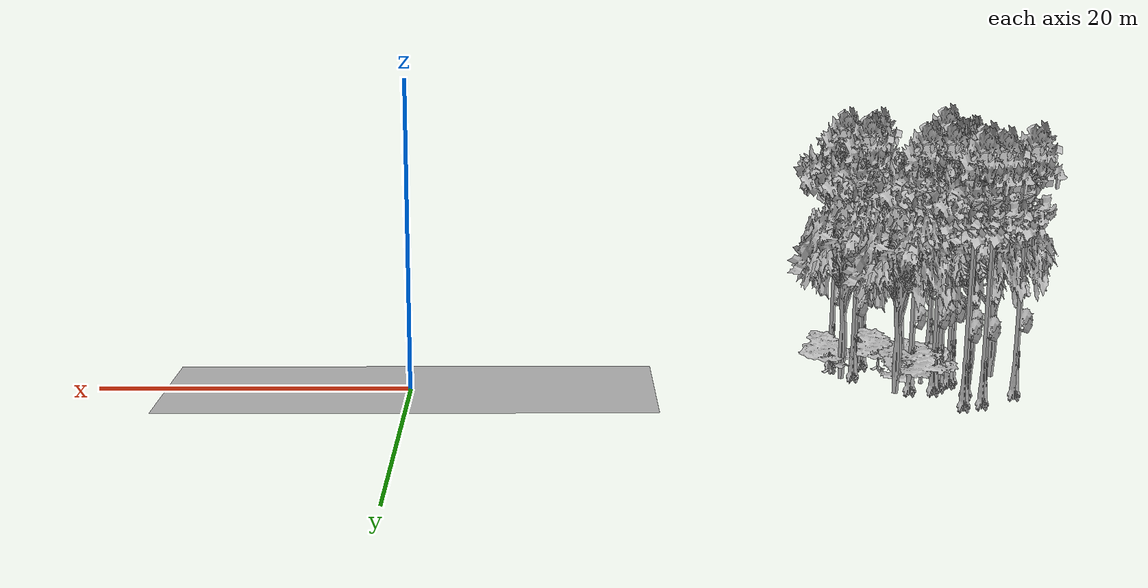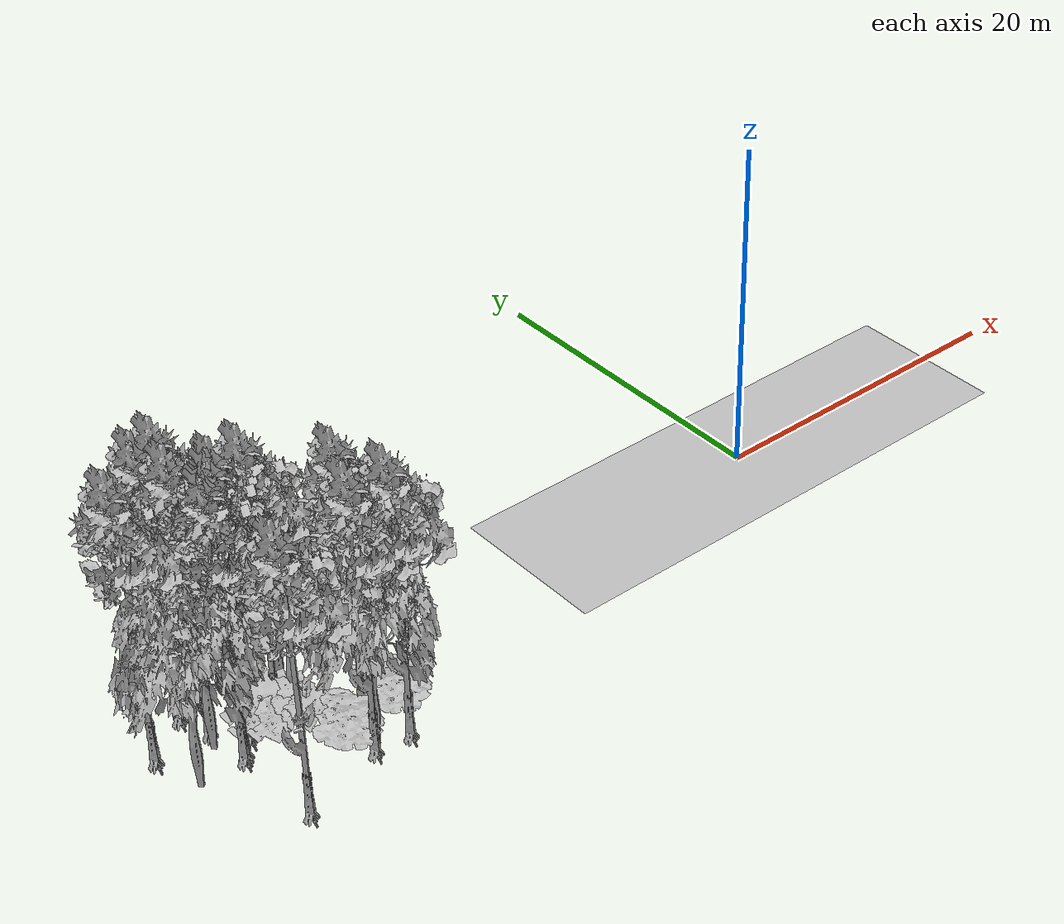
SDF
<sdf version="1.7">
 <world name="default">
  <model name="ground_plane">
   <static>1</static>
   <link name="link">
    <collision name="collision">
     <pose>-50 0 0 0 -0 0</pose>
     <geometry><plane><normal>0 0 1</normal><size>100 100</size></plane></geometry>
     <surface><contact><ode><min_depth>0.01</min_depth><max_vel>0</max_vel></ode></contact></surface>
    </collision>
    <visual name="grass">
     <cast_shadows>0</cast_shadows>
     <geometry>
      <mesh>
       <scale>0.5814285714285714 0.18142857142857144 0.1</scale>
       <uri>file://grass_plane/meshes/grass_plane.dae</uri>
      </mesh>
     </geometry>
    </visual>
   </link>
  </model>
  <model name="Tree 23">
   <static>1</static>
   <pose>-33.157972557217185 -1.3379758567242597 0 1.57079 -0 0</pose>
   <link name="link">
    <collision name="collision">
     <geometry><mesh><scale>3 2 3</scale><uri>model://tree_3/meshes/tree_3.obj</uri></mesh></geometry>
    </collision>
    <visual name="visual">
     <geometry><mesh><scale>3 2 3</scale><uri>model://tree_3/meshes/tree_3.obj</uri></mesh></geometry>
    </visual>
   </link>
  </model>
  <model name="Tree 79">
   <static>1</static>
   <pose>-38.12157944110077 -2.5522789776158668 0 1.57079 -0 0</pose>
   <link name="link">
    <collision name="collision">
     <geometry><mesh><scale>3.5 5 3.5</scale><uri>model://tree_2/meshes/tree_2.obj</uri></mesh></geometry>
    </collision>
    <visual name="visual">
     <geometry><mesh><scale>3.5 5 3.5</scale><uri>model://tree_2/meshes/tree_2.obj</uri></mesh></geometry>
    </visual>
   </link>
  </model>
  <model name="Tree 120">
   <static>1</static>
   <pose>-31.72703118824966 -1.3340469462834506 0 1.57079 -0 0</pose>
   <link name="link">
    <collision name="collision">
     <geometry><mesh><scale>3.5 5 3.5</scale><uri>model://tree_2/meshes/tree_2.obj</uri></mesh></geometry>
    </collision>
    <visual name="visual">
     <geometry><mesh><scale>3.5 5 3.5</scale><uri>model://tree_2/meshes/tree_2.obj</uri></mesh></geometry>
    </visual>
   </link>
  </model>
  <model name="Tree 123">
   <static>1</static>
   <pose>-35.16788557259518 -2.0317393601325264 0 1.57079 -0 0</pose>
   <link name="link">
    <collision name="collision">
     <geometry><mesh><scale>3.5 5 3.5</scale><uri>model://tree_9/meshes/tree_9.obj</uri></mesh></geometry>
    </collision>
    <visual name="visual">
     <geometry><mesh><scale>3.5 5 3.5</scale><uri>model://tree_9/meshes/tree_9.obj</uri></mesh></geometry>
    </visual>
   </link>
  </model>
  <model name="Tree 155">
   <static>1</static>
   <pose>-28.185803099111215 -2.163787672048045 0 1.57079 -0 0</pose>
   <link name="link">
    <collision name="collision">
     <geometry><mesh><scale>3.5 5 3.5</scale><uri>model://tree_2/meshes/tree_2.obj</uri></mesh></geometry>
    </collision>
    <visual name="visual">
     <geometry><mesh><scale>3.5 5 3.5</scale><uri>model://tree_2/meshes/tree_2.obj</uri></mesh></geometry>
    </visual>
   </link>
  </model>
  <model name="Tree 184">
   <static>1</static>
   <pose>-33.798739994826406 -0.4799445855020643 0 1.57079 -0 0</pose>
   <link name="link">
    <collision name="collision">
     <geometry><mesh><scale>3.5 5 3.5</scale><uri>model://tree_9/meshes/tree_9.obj</uri></mesh></geometry>
    </collision>
    <visual name="visual">
     <geometry><mesh><scale>3.5 5 3.5</scale><uri>model://tree_9/meshes/tree_9.obj</uri></mesh></geometry>
    </visual>
   </link>
  </model>
  <model name="Tree 188">
   <static>1</static>
   <pose>-32.26415668385563 -0.47855789451170594 0 1.57079 -0 0</pose>
   <link name="link">
    <collision name="collision">
     <geometry><mesh><scale>3.5 5 3.5</scale><uri>model://tree_9/meshes/tree_9.obj</uri></mesh></geometry>
    </collision>
    <visual name="visual">
     <geometry><mesh><scale>3.5 5 3.5</scale><uri>model://tree_9/meshes/tree_9.obj</uri></mesh></geometry>
    </visual>
   </link>
  </model>
  <model name="Tree 248">
   <static>1</static>
   <pose>-38.78617609711604 0.43099210494666096 0 1.57079 -0 0</pose>
   <link name="link">
    <collision name="collision">
     <geometry><mesh><scale>3.5 5 3.5</scale><uri>model://tree_9/meshes/tree_9.obj</uri></mesh></geometry>
    </collision>
    <visual name="visual">
     <geometry><mesh><scale>3.5 5 3.5</scale><uri>model://tree_9/meshes/tree_9.obj</uri></mesh></geometry>
    </visual>
   </link>
  </model>
  <model name="Tree 285">
   <static>1</static>
   <pose>-29.970217457176776 -5.780632660796755 0 1.57079 -0 0</pose>
   <link name="link">
    <collision name="collision">
     <geometry><mesh><scale>3.5 5 3.5</scale><uri>model://tree_2/meshes/tree_2.obj</uri></mesh></geometry>
    </collision>
    <visual name="visual">
     <geometry><mesh><scale>3.5 5 3.5</scale><uri>model://tree_2/meshes/tree_2.obj</uri></mesh></geometry>
    </visual>
   </link>
  </model>
  <model name="Tree 291">
   <static>1</static>
   <pose>-35.37718763701514 -2.2792620194789386 0 1.57079 -0 0</pose>
   <link name="link">
    <collision name="collision">
     <geometry><mesh><scale>3.5 5 3.5</scale><uri>model://tree_9/meshes/tree_9.obj</uri></mesh></geometry>
    </collision>
    <visual name="visual">
     <geometry><mesh><scale>3.5 5 3.5</scale><uri>model://tree_9/meshes/tree_9.obj</uri></mesh></geometry>
    </visual>
   </link>
  </model>
  <model name="Tree 352">
   <static>1</static>
   <pose>-34.34122828568171 -1.1824027472017011 0 1.57079 -0 0</pose>
   <link name="link">
    <collision name="collision">
     <geometry><mesh><scale>3.5 5 3.5</scale><uri>model://tree_9/meshes/tree_9.obj</uri></mesh></geometry>
    </collision>
    <visual name="visual">
     <geometry><mesh><scale>3.5 5 3.5</scale><uri>model://tree_9/meshes/tree_9.obj</uri></mesh></geometry>
    </visual>
   </link>
  </model>
  <model name="Tree 370">
   <static>1</static>
   <pose>-35.11409360523716 -7.516257942602849 0 1.57079 -0 0</pose>
   <link name="link">
    <collision name="collision">
     <geometry><mesh><scale>3.5 5 3.5</scale><uri>model://tree_9/meshes/tree_9.obj</uri></mesh></geometry>
    </collision>
    <visual name="visual">
     <geometry><mesh><scale>3.5 5 3.5</scale><uri>model://tree_9/meshes/tree_9.obj</uri></mesh></geometry>
    </visual>
   </link>
  </model>
  <model name="Tree 417">
   <static>1</static>
   <pose>-28.143418496462377 -6.173523545952918 0 1.57079 -0 0</pose>
   <link name="link">
    <collision name="collision">
     <geometry><mesh><scale>3.5 5 3.5</scale><uri>model://tree_9/meshes/tree_9.obj</uri></mesh></geometry>
    </collision>
    <visual name="visual">
     <geometry><mesh><scale>3.5 5 3.5</scale><uri>model://tree_9/meshes/tree_9.obj</uri></mesh></geometry>
    </visual>
   </link>
  </model>
  <model name="Tree 458">
   <static>1</static>
   <pose>-36.19234305395764 -0.712347195967288 0 1.57079 -0 0</pose>
   <link name="link">
    <collision name="collision">
     <geometry><mesh><scale>3.5 5 3.5</scale><uri>model://tree_2/meshes/tree_2.obj</uri></mesh></geometry>
    </collision>
    <visual name="visual">
     <geometry><mesh><scale>3.5 5 3.5</scale><uri>model://tree_2/meshes/tree_2.obj</uri></mesh></geometry>
    </visual>
   </link>
  </model>
  <model name="Tree 459">
   <static>1</static>
   <pose>-30.198947089543548 -6.019097096407467 0 1.57079 -0 0</pose>
   <link name="link">
    <collision name="collision">
     <geometry><mesh><scale>3.5 5 3.5</scale><uri>model://tree_9/meshes/tree_9.obj</uri></mesh></geometry>
    </collision>
    <visual name="visual">
     <geometry><mesh><scale>3.5 5 3.5</scale><uri>model://tree_9/meshes/tree_9.obj</uri></mesh></geometry>
    </visual>
   </link>
  </model>
  <model name="Tree 478">
   <static>1</static>
   <pose>-34.97753662888709 2.7053236228995203 0 1.57079 -0 0</pose>
   <link name="link">
    <collision name="collision">
     <geometry><mesh><scale>3.5 5 3.5</scale><uri>model://tree_9/meshes/tree_9.obj</uri></mesh></geometry>
    </collision>
    <visual name="visual">
     <geometry><mesh><scale>3.5 5 3.5</scale><uri>model://tree_9/meshes/tree_9.obj</uri></mesh></geometry>
    </visual>
   </link>
  </model>
  <model name="Tree 485">
   <static>1</static>
   <pose>-30.959753590321373 -4.281396923890757 0 1.57079 -0 0</pose>
   <link name="link">
    <collision name="collision">
     <geometry><mesh><scale>4 2.5 4</scale><uri>model://tree_1/meshes/tree_1.obj</uri></mesh></geometry>
    </collision>
    <visual name="visual">
     <geometry><mesh><scale>4 2.5 4</scale><uri>model://tree_1/meshes/tree_1.obj</uri></mesh></geometry>
    </visual>
   </link>
  </model>
  <model name="Tree 486">
   <static>1</static>
   <pose>-32.55497649297193 -2.061286591572193 0 1.57079 -0 0</pose>
   <link name="link">
    <collision name="collision">
     <geometry><mesh><scale>3 2 3</scale><uri>model://tree_3/meshes/tree_3.obj</uri></mesh></geometry>
    </collision>
    <visual name="visual">
     <geometry><mesh><scale>3 2 3</scale><uri>model://tree_3/meshes/tree_3.obj</uri></mesh></geometry>
    </visual>
   </link>
  </model>
  <model name="Tree 495">
   <static>1</static>
   <pose>-36.249983231139524 2.2736948528829046 0 1.57079 -0 0</pose>
   <link name="link">
    <collision name="collision">
     <geometry><mesh><scale>3.5 5 3.5</scale><uri>model://tree_9/meshes/tree_9.obj</uri></mesh></geometry>
    </collision>
    <visual name="visual">
     <geometry><mesh><scale>3.5 5 3.5</scale><uri>model://tree_9/meshes/tree_9.obj</uri></mesh></geometry>
    </visual>
   </link>
  </model>
  <model name="Tree 498">
   <static>1</static>
   <pose>-29.130975824335916 -3.5051741216786816 0 1.57079 -0 0</pose>
   <link name="link">
    <collision name="collision">
     <geometry><mesh><scale>3.5 5 3.5</scale><uri>model://tree_9/meshes/tree_9.obj</uri></mesh></geometry>
    </collision>
    <visual name="visual">
     <geometry><mesh><scale>3.5 5 3.5</scale><uri>model://tree_9/meshes/tree_9.obj</uri></mesh></geometry>
    </visual>
   </link>
  </model>
  <model name="Tree 501">
   <static>1</static>
   <pose>-31.082984503023543 0.9808534328620322 0 1.57079 -0 0</pose>
   <link name="link">
    <collision name="collision">
     <geometry><mesh><scale>3.5 5 3.5</scale><uri>model://tree_2/meshes/tree_2.obj</uri></mesh></geometry>
    </collision>
    <visual name="visual">
     <geometry><mesh><scale>3.5 5 3.5</scale><uri>model://tree_2/meshes/tree_2.obj</uri></mesh></geometry>
    </visual>
   </link>
  </model>
  <model name="Tree 523">
   <static>1</static>
   <pose>-27.587673180478294 -3.694058309904179 0 1.57079 -0 0</pose>
   <link name="link">
    <collision name="collision">
     <geometry><mesh><scale>4 2.5 4</scale><uri>model://tree_1/meshes/tree_1.obj</uri></mesh></geometry>
    </collision>
    <visual name="visual">
     <geometry><mesh><scale>4 2.5 4</scale><uri>model://tree_1/meshes/tree_1.obj</uri></mesh></geometry>
    </visual>
   </link>
  </model>
  <model name="Tree 531">
   <static>1</static>
   <pose>-35.66918844837817 0.4081442417736998 0 1.57079 -0 0</pose>
   <link name="link">
    <collision name="collision">
     <geometry><mesh><scale>3.5 5 3.5</scale><uri>model://tree_9/meshes/tree_9.obj</uri></mesh></geometry>
    </collision>
    <visual name="visual">
     <geometry><mesh><scale>3.5 5 3.5</scale><uri>model://tree_9/meshes/tree_9.obj</uri></mesh></geometry>
    </visual>
   </link>
  </model>
 </world>
</sdf>
